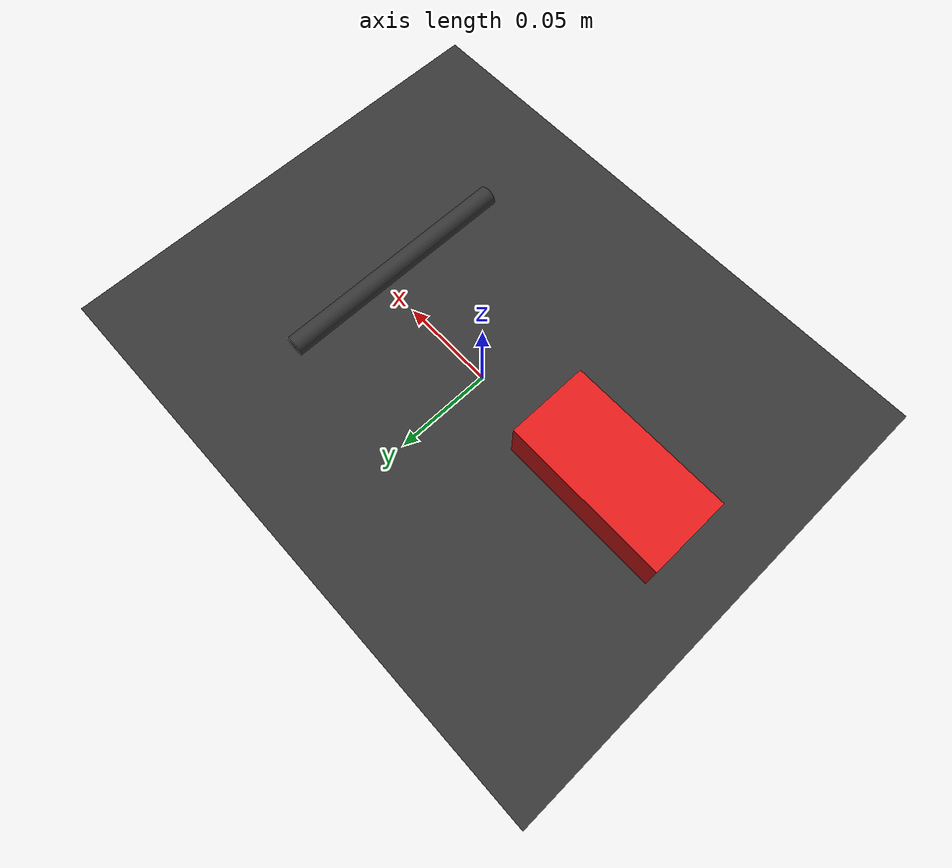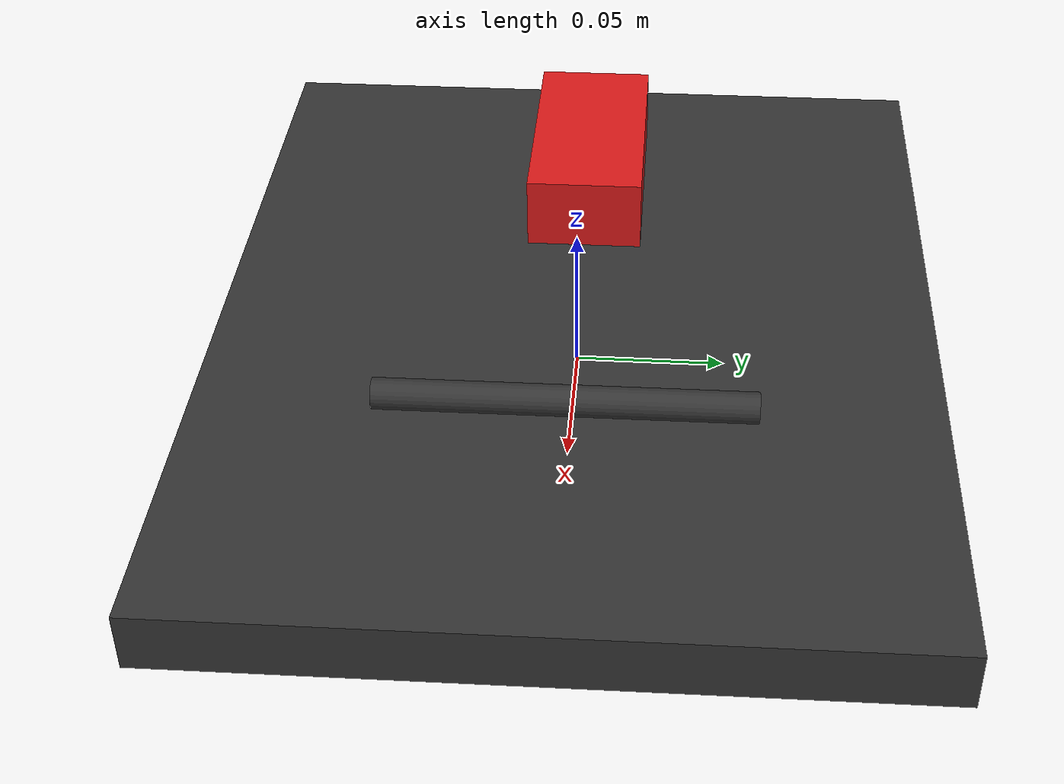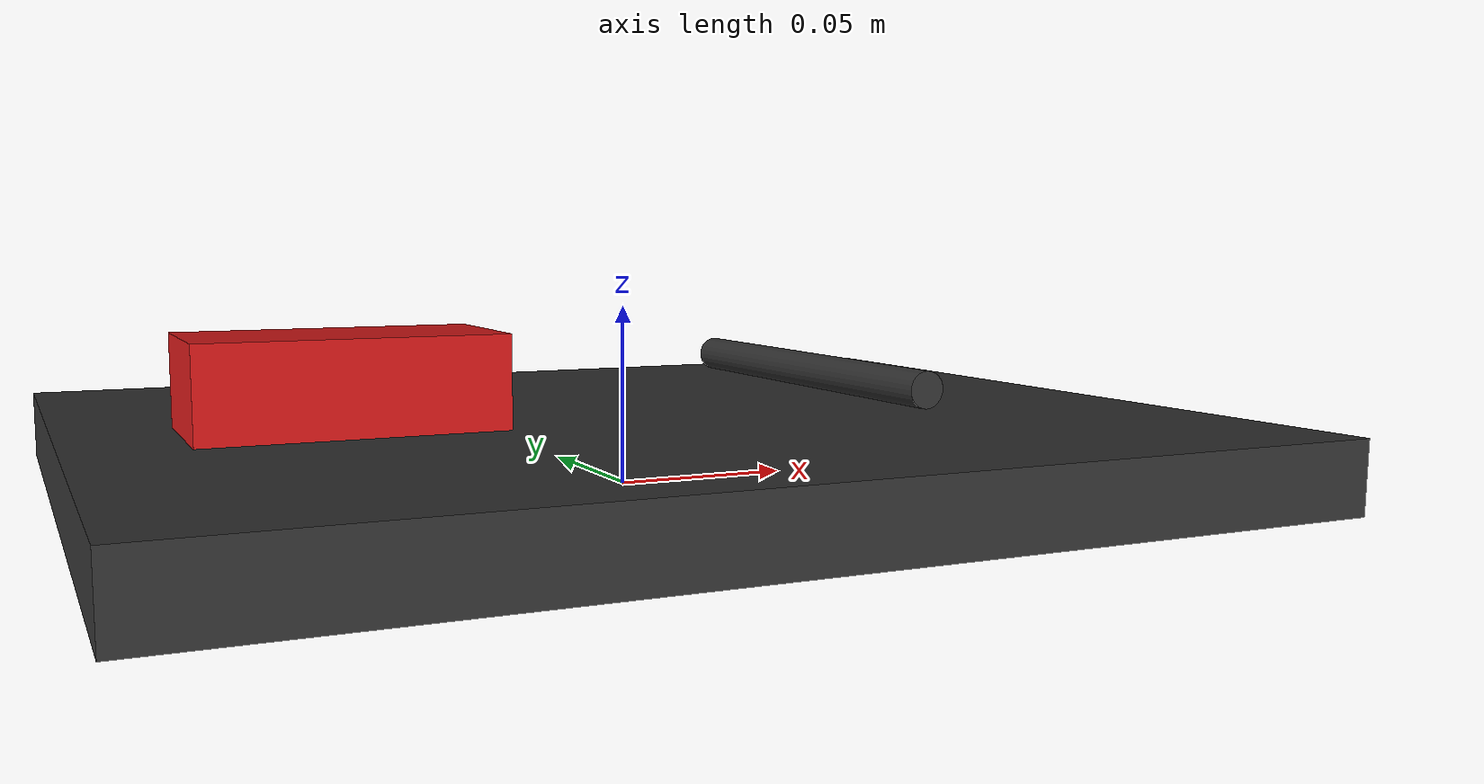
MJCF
<?xml version="1.0" encoding="utf-8"?>
<mujoco model="optical_breadboard_laser">
  <compiler angle="radian" autolimits="true"/>
  <default>
    <default class="body"><geom contype="1" conaffinity="1"/></default>
  </default>
  <worldbody>
    <body name="base">
      <geom type="box" size="0.15 0.12 0.01" pos="0 0 0.01" rgba="0.2 0.2 0.2 1" class="body"/>
      <geom type="box" size="0.04 0.02 0.015" pos="-0.08 0 0.03" rgba="0.85 0.1 0.1 1" class="body"/>
      <body name="laser_mount" pos="0.06 0 0.03">
        <joint name="laser_mount_joint" type="slide" axis="1 0 0" range="0 0.10" damping="1.0" frictionloss="0.5"/>
  <geom type="cylinder" size="0.005 0.06" pos="0 0 0" rgba="0.2 0.2 0.2 1" class="body" quat="0.7071068 0.7071068 0 0"/>
      </body>
    </body>
  </worldbody>
</mujoco>
